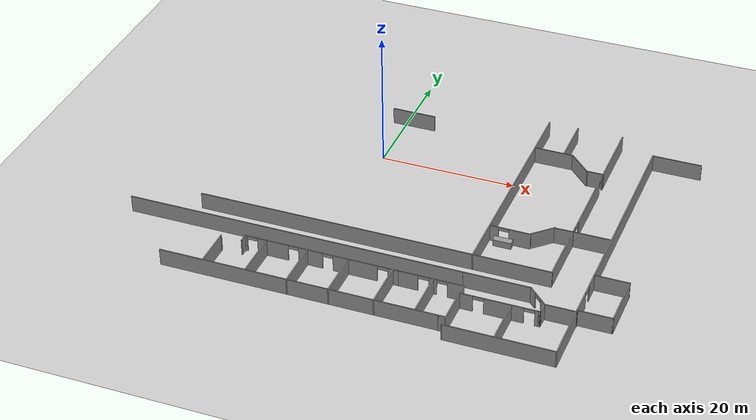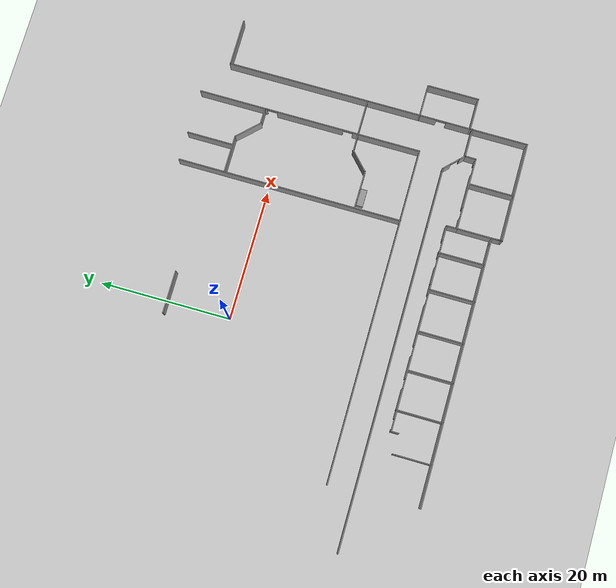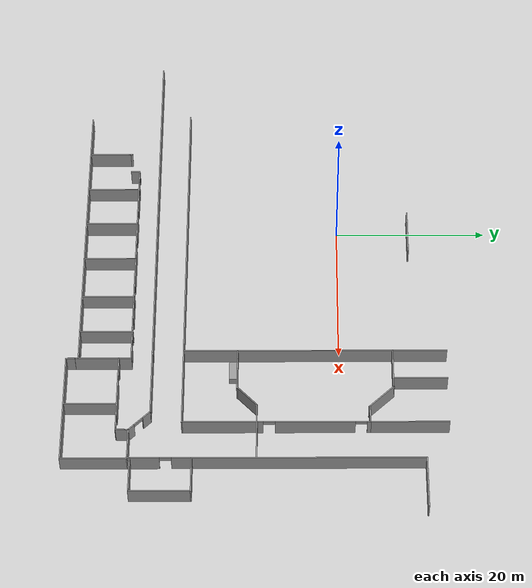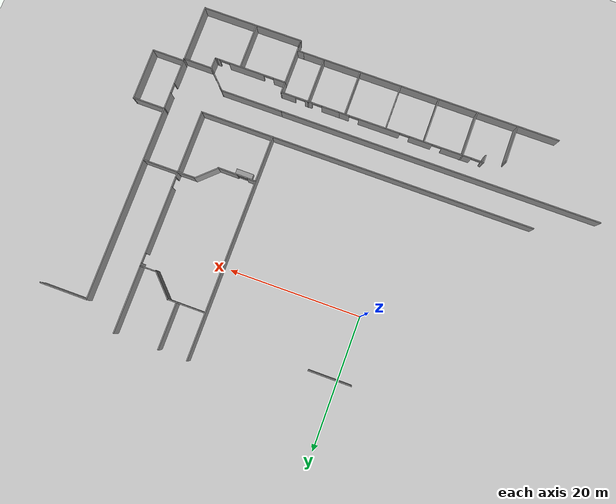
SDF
<sdf version="1.6">
 <world name="default">
  <model name="ground_plane">
   <static>1</static>
   <link name="link">
    <collision name="collision">
     <geometry><plane><normal>0 0 1</normal><size>100 100</size></plane></geometry>
     <surface><friction><ode><mu>100</mu><mu2>50</mu2></ode></friction></surface>
    </collision>
    <visual name="visual">
     <cast_shadows>0</cast_shadows>
     <geometry><plane><normal>0 0 1</normal><size>100 100</size></plane></geometry>
     <material>
      <script><uri>file://media/materials/scripts/gazebo.material</uri><name>Gazebo/Grey</name></script>
     </material>
    </visual>
   </link>
  </model>
  <model name="aule_N">
   <pose>0.1887 -1.4289 0 0 -0 0</pose>
   <link name="Wall_102">
    <collision name="Wall_102_Collision">
     <geometry><box><size>10.25 0.15 2.5</size></box></geometry>
     <pose>0 0 1.25 0 -0 0</pose>
    </collision>
    <visual name="Wall_102_Visual">
     <pose>0 0 1.25 0 -0 0</pose>
     <geometry><box><size>10.25 0.15 2.5</size></box></geometry>
     <material>
      <script><uri>file://media/materials/scripts/gazebo.material</uri><name>Gazebo/Grey</name></script>
      <ambient>1 1 1 1</ambient>
     </material>
    </visual>
    <pose>31.8169 10.3497 0 0 -0 1.5708</pose>
   </link>
   <link name="Wall_106">
    <collision name="Wall_106_Collision">
     <geometry><box><size>7 0.15 2.5</size></box></geometry>
     <pose>0 0 1.25 0 -0 0</pose>
    </collision>
    <visual name="Wall_106_Visual">
     <pose>0 0 1.25 0 -0 0</pose>
     <geometry><box><size>7 0.15 2.5</size></box></geometry>
     <material>
      <script><uri>file://media/materials/scripts/gazebo.material</uri><name>Gazebo/Grey</name></script>
      <ambient>1 1 1 1</ambient>
     </material>
    </visual>
    <pose>25.0644 11.9766 0 0 0 -1.5708</pose>
   </link>
   <link name="Wall_148">
    <collision name="Wall_148_Collision">
     <geometry><box><size>6.5 0.15 2.5</size></box></geometry>
     <pose>0 0 1.25 0 -0 0</pose>
    </collision>
    <visual name="Wall_148_Visual">
     <pose>0 0 1.25 0 -0 0</pose>
     <geometry><box><size>6.5 0.15 2.5</size></box></geometry>
     <material>
      <script><uri>file://media/materials/scripts/gazebo.material</uri><name>Gazebo/Grey</name></script>
      <ambient>1 1 1 1</ambient>
     </material>
    </visual>
    <pose>1.0491 10.9731 0 0 -0 0</pose>
   </link>
   <link name="Wall_186">
    <pose>37.2203 -21.5545 0 0 0 -1.5708</pose>
    <visual name="Wall_186_Visual_0">
     <pose>-2.80179 0 1.25 0 -0 0</pose>
     <geometry><box><size>2.64642 0.15 2.5</size></box></geometry>
     <material>
      <script><uri>file://media/materials/scripts/gazebo.material</uri><name>Gazebo/Grey</name></script>
      <ambient>1 1 1 1</ambient>
     </material>
    </visual>
    <collision name="Wall_186_Collision_0">
     <geometry><box><size>2.64642 0.15 2.5</size></box></geometry>
     <pose>-2.80179 0 1.25 0 -0 0</pose>
    </collision>
    <visual name="Wall_186_Visual_1">
     <pose>2.07321 0 1.25 0 -0 0</pose>
     <geometry><box><size>4.10358 0.15 2.5</size></box></geometry>
     <material>
      <script><uri>file://media/materials/scripts/gazebo.material</uri><name>Gazebo/Grey</name></script>
      <ambient>1 1 1 1</ambient>
     </material>
    </visual>
    <collision name="Wall_186_Collision_1">
     <geometry><box><size>4.10358 0.15 2.5</size></box></geometry>
     <pose>2.07321 0 1.25 0 -0 0</pose>
    </collision>
    <visual name="Wall_186_Visual_2">
     <pose>-0.728584 0 2.25 0 -0 0</pose>
     <geometry><box><size>1.5 0.15 0.5</size></box></geometry>
     <material>
      <script><uri>file://media/materials/scripts/gazebo.material</uri><name>Gazebo/Grey</name></script>
      <ambient>1 1 1 1</ambient>
     </material>
    </visual>
    <collision name="Wall_186_Collision_2">
     <geometry><box><size>1.5 0.15 0.5</size></box></geometry>
     <pose>-0.728584 0 2.25 0 -0 0</pose>
    </collision>
   </link>
   <link name="Wall_190">
    <collision name="Wall_190_Collision">
     <geometry><box><size>49.25 0.15 2.5</size></box></geometry>
     <pose>0 0 1.25 0 -0 0</pose>
    </collision>
    <visual name="Wall_190_Visual">
     <pose>0 0 1.25 0 -0 0</pose>
     <geometry><box><size>49.25 0.15 2.5</size></box></geometry>
     <material>
      <script><uri>file://media/materials/scripts/gazebo.material</uri><name>Gazebo/Grey</name></script>
      <ambient>1 1 1 1</ambient>
     </material>
    </visual>
    <pose>-3.68943 -22.9551 0 0 -0 0</pose>
   </link>
   <link name="Wall_192">
    <collision name="Wall_192_Collision">
     <geometry><box><size>9.5 0.15 2.5</size></box></geometry>
     <pose>0 0 1.25 0 -0 0</pose>
    </collision>
    <visual name="Wall_192_Visual">
     <pose>0 0 1.25 0 -0 0</pose>
     <geometry><box><size>9.5 0.15 2.5</size></box></geometry>
     <material>
      <script><uri>file://media/materials/scripts/gazebo.material</uri><name>Gazebo/Grey</name></script>
      <ambient>1 1 1 1</ambient>
     </material>
    </visual>
    <pose>25.5356 -22.9551 0 0 -0 0</pose>
   </link>
   <link name="Wall_193">
    <pose>31.5718 -24.3163 0 0 0 -0.785398</pose>
    <visual name="Wall_193_Visual_0">
     <pose>-1.29532 0 1.25 0 -0 0</pose>
     <geometry><box><size>1.40936 0.15 2.5</size></box></geometry>
     <material>
      <script><uri>file://media/materials/scripts/gazebo.material</uri><name>Gazebo/Grey</name></script>
      <ambient>1 1 1 1</ambient>
     </material>
    </visual>
    <collision name="Wall_193_Collision_0">
     <geometry><box><size>1.40936 0.15 2.5</size></box></geometry>
     <pose>-1.29532 0 1.25 0 -0 0</pose>
    </collision>
    <visual name="Wall_193_Visual_1">
     <pose>1.45468 0 1.25 0 -0 0</pose>
     <geometry><box><size>1.09064 0.15 2.5</size></box></geometry>
     <material>
      <script><uri>file://media/materials/scripts/gazebo.material</uri><name>Gazebo/Grey</name></script>
      <ambient>1 1 1 1</ambient>
     </material>
    </visual>
    <collision name="Wall_193_Collision_1">
     <geometry><box><size>1.09064 0.15 2.5</size></box></geometry>
     <pose>1.45468 0 1.25 0 -0 0</pose>
    </collision>
    <visual name="Wall_193_Visual_2">
     <pose>0.15936 0 2.25 0 -0 0</pose>
     <geometry><box><size>1.5 0.15 0.5</size></box></geometry>
     <material>
      <script><uri>file://media/materials/scripts/gazebo.material</uri><name>Gazebo/Grey</name></script>
      <ambient>1 1 1 1</ambient>
     </material>
    </visual>
    <collision name="Wall_193_Collision_2">
     <geometry><box><size>1.5 0.15 0.5</size></box></geometry>
     <pose>0.15936 0 2.25 0 -0 0</pose>
    </collision>
   </link>
   <link name="Wall_194">
    <collision name="Wall_194_Collision">
     <geometry><box><size>4.5 0.15 2.5</size></box></geometry>
     <pose>0 0 1.25 0 -0 0</pose>
    </collision>
    <visual name="Wall_194_Visual">
     <pose>0 0 1.25 0 -0 0</pose>
     <geometry><box><size>4.5 0.15 2.5</size></box></geometry>
     <material>
      <script><uri>file://media/materials/scripts/gazebo.material</uri><name>Gazebo/Grey</name></script>
      <ambient>1 1 1 1</ambient>
     </material>
    </visual>
    <pose>35.1079 -25.6775 0 0 -0 0</pose>
   </link>
   <link name="Wall_200">
    <collision name="Wall_200_Collision">
     <geometry><box><size>1.25 0.15 2.5</size></box></geometry>
     <pose>0 0 1.25 0 -0 0</pose>
    </collision>
    <visual name="Wall_200_Visual">
     <pose>0 0 1.25 0 -0 0</pose>
     <geometry><box><size>1.25 0.15 2.5</size></box></geometry>
     <material>
      <script><uri>file://media/materials/scripts/gazebo.material</uri><name>Gazebo/Grey</name></script>
      <ambient>1 1 1 1</ambient>
     </material>
    </visual>
    <pose>-9.6092 -26.2662 0 0 -0 1.5708</pose>
   </link>
   <link name="Wall_201">
    <pose>1.5658 -25.7162 0 0 -0 0</pose>
    <visual name="Wall_201_Visual_0">
     <pose>-11.0306 0 1.25 0 -0 0</pose>
     <geometry><box><size>0.438757 0.15 2.5</size></box></geometry>
     <material>
      <script><uri>file://media/materials/scripts/gazebo.material</uri><name>Gazebo/Grey</name></script>
      <ambient>1 1 1 1</ambient>
     </material>
    </visual>
    <collision name="Wall_201_Collision_0">
     <geometry><box><size>0.438757 0.15 2.5</size></box></geometry>
     <pose>-11.0306 0 1.25 0 -0 0</pose>
    </collision>
    <visual name="Wall_201_Visual_1">
     <pose>-7.0473 0 1.25 0 -0 0</pose>
     <geometry><box><size>4.52788 0.15 2.5</size></box></geometry>
     <material>
      <script><uri>file://media/materials/scripts/gazebo.material</uri><name>Gazebo/Grey</name></script>
      <ambient>1 1 1 1</ambient>
     </material>
    </visual>
    <collision name="Wall_201_Collision_1">
     <geometry><box><size>4.52788 0.15 2.5</size></box></geometry>
     <pose>-7.0473 0 1.25 0 -0 0</pose>
    </collision>
    <visual name="Wall_201_Visual_2">
     <pose>-1.52512 0 1.25 0 -0 0</pose>
     <geometry><box><size>3.51649 0.15 2.5</size></box></geometry>
     <material>
      <script><uri>file://media/materials/scripts/gazebo.material</uri><name>Gazebo/Grey</name></script>
      <ambient>1 1 1 1</ambient>
     </material>
    </visual>
    <collision name="Wall_201_Collision_2">
     <geometry><box><size>3.51649 0.15 2.5</size></box></geometry>
     <pose>-1.52512 0 1.25 0 -0 0</pose>
    </collision>
    <visual name="Wall_201_Visual_3">
     <pose>4.92755 0 1.25 0 -0 0</pose>
     <geometry><box><size>6.38884 0.15 2.5</size></box></geometry>
     <material>
      <script><uri>file://media/materials/scripts/gazebo.material</uri><name>Gazebo/Grey</name></script>
      <ambient>1 1 1 1</ambient>
     </material>
    </visual>
    <collision name="Wall_201_Collision_3">
     <geometry><box><size>6.38884 0.15 2.5</size></box></geometry>
     <pose>4.92755 0 1.25 0 -0 0</pose>
    </collision>
    <visual name="Wall_201_Visual_4">
     <pose>10.436 0 1.25 0 -0 0</pose>
     <geometry><box><size>1.62803 0.15 2.5</size></box></geometry>
     <material>
      <script><uri>file://media/materials/scripts/gazebo.material</uri><name>Gazebo/Grey</name></script>
      <ambient>1 1 1 1</ambient>
     </material>
    </visual>
    <collision name="Wall_201_Collision_4">
     <geometry><box><size>1.62803 0.15 2.5</size></box></geometry>
     <pose>10.436 0 1.25 0 -0 0</pose>
    </collision>
    <visual name="Wall_201_Visual_5">
     <pose>-10.0612 0 2.25 0 -0 0</pose>
     <geometry><box><size>1.5 0.15 0.5</size></box></geometry>
     <material>
      <script><uri>file://media/materials/scripts/gazebo.material</uri><name>Gazebo/Grey</name></script>
      <ambient>1 1 1 1</ambient>
     </material>
    </visual>
    <collision name="Wall_201_Collision_5">
     <geometry><box><size>1.5 0.15 0.5</size></box></geometry>
     <pose>-10.0612 0 2.25 0 -0 0</pose>
    </collision>
    <visual name="Wall_201_Visual_6">
     <pose>-4.03336 0 2.25 0 -0 0</pose>
     <geometry><box><size>1.5 0.15 0.5</size></box></geometry>
     <material>
      <script><uri>file://media/materials/scripts/gazebo.material</uri><name>Gazebo/Grey</name></script>
      <ambient>1 1 1 1</ambient>
     </material>
    </visual>
    <collision name="Wall_201_Collision_6">
     <geometry><box><size>1.5 0.15 0.5</size></box></geometry>
     <pose>-4.03336 0 2.25 0 -0 0</pose>
    </collision>
    <visual name="Wall_201_Visual_7">
     <pose>0.98313 0 2.25 0 -0 0</pose>
     <geometry><box><size>1.5 0.15 0.5</size></box></geometry>
     <material>
      <script><uri>file://media/materials/scripts/gazebo.material</uri><name>Gazebo/Grey</name></script>
      <ambient>1 1 1 1</ambient>
     </material>
    </visual>
    <collision name="Wall_201_Collision_7">
     <geometry><box><size>1.5 0.15 0.5</size></box></geometry>
     <pose>0.98313 0 2.25 0 -0 0</pose>
    </collision>
    <visual name="Wall_201_Visual_8">
     <pose>8.87197 0 2.25 0 -0 0</pose>
     <geometry><box><size>1.5 0.15 0.5</size></box></geometry>
     <material>
      <script><uri>file://media/materials/scripts/gazebo.material</uri><name>Gazebo/Grey</name></script>
      <ambient>1 1 1 1</ambient>
     </material>
    </visual>
    <collision name="Wall_201_Collision_8">
     <geometry><box><size>1.5 0.15 0.5</size></box></geometry>
     <pose>8.87197 0 2.25 0 -0 0</pose>
    </collision>
   </link>
   <link name="Wall_202">
    <pose>17.2908 -25.7162 0 0 -0 0</pose>
    <visual name="Wall_202_Visual_0">
     <pose>-3.22144 0 1.25 0 -0 0</pose>
     <geometry><box><size>2.80712 0.15 2.5</size></box></geometry>
     <material>
      <script><uri>file://media/materials/scripts/gazebo.material</uri><name>Gazebo/Grey</name></script>
      <ambient>1 1 1 1</ambient>
     </material>
    </visual>
    <collision name="Wall_202_Collision_0">
     <geometry><box><size>2.80712 0.15 2.5</size></box></geometry>
     <pose>-3.22144 0 1.25 0 -0 0</pose>
    </collision>
    <visual name="Wall_202_Visual_1">
     <pose>0.246922 0 1.25 0 -0 0</pose>
     <geometry><box><size>1.12961 0.15 2.5</size></box></geometry>
     <material>
      <script><uri>file://media/materials/scripts/gazebo.material</uri><name>Gazebo/Grey</name></script>
      <ambient>1 1 1 1</ambient>
     </material>
    </visual>
    <collision name="Wall_202_Collision_1">
     <geometry><box><size>1.12961 0.15 2.5</size></box></geometry>
     <pose>0.246922 0 1.25 0 -0 0</pose>
    </collision>
    <visual name="Wall_202_Visual_2">
     <pose>3.46836 0 1.25 0 -0 0</pose>
     <geometry><box><size>2.31327 0.15 2.5</size></box></geometry>
     <material>
      <script><uri>file://media/materials/scripts/gazebo.material</uri><name>Gazebo/Grey</name></script>
      <ambient>1 1 1 1</ambient>
     </material>
    </visual>
    <collision name="Wall_202_Collision_2">
     <geometry><box><size>2.31327 0.15 2.5</size></box></geometry>
     <pose>3.46836 0 1.25 0 -0 0</pose>
    </collision>
    <visual name="Wall_202_Visual_3">
     <pose>-1.06788 0 2.25 0 -0 0</pose>
     <geometry><box><size>1.5 0.15 0.5</size></box></geometry>
     <material>
      <script><uri>file://media/materials/scripts/gazebo.material</uri><name>Gazebo/Grey</name></script>
      <ambient>1 1 1 1</ambient>
     </material>
    </visual>
    <collision name="Wall_202_Collision_3">
     <geometry><box><size>1.5 0.15 0.5</size></box></geometry>
     <pose>-1.06788 0 2.25 0 -0 0</pose>
    </collision>
    <visual name="Wall_202_Visual_4">
     <pose>1.56173 0 2.25 0 -0 0</pose>
     <geometry><box><size>1.5 0.15 0.5</size></box></geometry>
     <material>
      <script><uri>file://media/materials/scripts/gazebo.material</uri><name>Gazebo/Grey</name></script>
      <ambient>1 1 1 1</ambient>
     </material>
    </visual>
    <collision name="Wall_202_Collision_4">
     <geometry><box><size>1.5 0.15 0.5</size></box></geometry>
     <pose>1.56173 0 2.25 0 -0 0</pose>
    </collision>
   </link>
   <link name="Wall_203">
    <collision name="Wall_203_Collision">
     <geometry><box><size>1.75 0.15 2.5</size></box></geometry>
     <pose>0 0 1.25 0 -0 0</pose>
    </collision>
    <visual name="Wall_203_Visual">
     <pose>0 0 1.25 0 -0 0</pose>
     <geometry><box><size>1.75 0.15 2.5</size></box></geometry>
     <material>
      <script><uri>file://media/materials/scripts/gazebo.material</uri><name>Gazebo/Grey</name></script>
      <ambient>1 1 1 1</ambient>
     </material>
    </visual>
    <pose>21.8408 -26.5162 0 0 0 -1.5708</pose>
   </link>
   <link name="Wall_204">
    <pose>27.2658 -27.3162 0 0 -0 0</pose>
    <visual name="Wall_204_Visual_0">
     <pose>-4.54037 0 1.25 0 -0 0</pose>
     <geometry><box><size>1.91926 0.15 2.5</size></box></geometry>
     <material>
      <script><uri>file://media/materials/scripts/gazebo.material</uri><name>Gazebo/Grey</name></script>
      <ambient>1 1 1 1</ambient>
     </material>
    </visual>
    <collision name="Wall_204_Collision_0">
     <geometry><box><size>1.91926 0.15 2.5</size></box></geometry>
     <pose>-4.54037 0 1.25 0 -0 0</pose>
    </collision>
    <visual name="Wall_204_Visual_1">
     <pose>0.656549 0 1.25 0 -0 0</pose>
     <geometry><box><size>5.47457 0.15 2.5</size></box></geometry>
     <material>
      <script><uri>file://media/materials/scripts/gazebo.material</uri><name>Gazebo/Grey</name></script>
      <ambient>1 1 1 1</ambient>
     </material>
    </visual>
    <collision name="Wall_204_Collision_1">
     <geometry><box><size>5.47457 0.15 2.5</size></box></geometry>
     <pose>0.656549 0 1.25 0 -0 0</pose>
    </collision>
    <visual name="Wall_204_Visual_2">
     <pose>5.19692 0 1.25 0 -0 0</pose>
     <geometry><box><size>0.606165 0.15 2.5</size></box></geometry>
     <material>
      <script><uri>file://media/materials/scripts/gazebo.material</uri><name>Gazebo/Grey</name></script>
      <ambient>1 1 1 1</ambient>
     </material>
    </visual>
    <collision name="Wall_204_Collision_2">
     <geometry><box><size>0.606165 0.15 2.5</size></box></geometry>
     <pose>5.19692 0 1.25 0 -0 0</pose>
    </collision>
    <visual name="Wall_204_Visual_3">
     <pose>-2.83074 0 2.25 0 -0 0</pose>
     <geometry><box><size>1.5 0.15 0.5</size></box></geometry>
     <material>
      <script><uri>file://media/materials/scripts/gazebo.material</uri><name>Gazebo/Grey</name></script>
      <ambient>1 1 1 1</ambient>
     </material>
    </visual>
    <collision name="Wall_204_Collision_3">
     <geometry><box><size>1.5 0.15 0.5</size></box></geometry>
     <pose>-2.83074 0 2.25 0 -0 0</pose>
    </collision>
    <visual name="Wall_204_Visual_4">
     <pose>4.14384 0 2.25 0 -0 0</pose>
     <geometry><box><size>1.5 0.15 0.5</size></box></geometry>
     <material>
      <script><uri>file://media/materials/scripts/gazebo.material</uri><name>Gazebo/Grey</name></script>
      <ambient>1 1 1 1</ambient>
     </material>
    </visual>
    <collision name="Wall_204_Collision_4">
     <geometry><box><size>1.5 0.15 0.5</size></box></geometry>
     <pose>4.14384 0 2.25 0 -0 0</pose>
    </collision>
   </link>
   <link name="Wall_205">
    <collision name="Wall_205_Collision">
     <geometry><box><size>0.25 0.15 2.5</size></box></geometry>
     <pose>0 0 1.25 0 -0 0</pose>
    </collision>
    <visual name="Wall_205_Visual">
     <pose>0 0 1.25 0 -0 0</pose>
     <geometry><box><size>0.25 0.15 2.5</size></box></geometry>
     <material>
      <script><uri>file://media/materials/scripts/gazebo.material</uri><name>Gazebo/Grey</name></script>
      <ambient>1 1 1 1</ambient>
     </material>
    </visual>
    <pose>32.7408 -27.3162 0 0 -0 0</pose>
   </link>
   <link name="Wall_206">
    <collision name="Wall_206_Collision">
     <geometry><box><size>0.25 0.15 2.5</size></box></geometry>
     <pose>0 0 1.25 0 -0 0</pose>
    </collision>
    <visual name="Wall_206_Visual">
     <pose>0 0 1.25 0 -0 0</pose>
     <geometry><box><size>0.25 0.15 2.5</size></box></geometry>
     <material>
      <script><uri>file://media/materials/scripts/gazebo.material</uri><name>Gazebo/Grey</name></script>
      <ambient>1 1 1 1</ambient>
     </material>
    </visual>
    <pose>32.8408 -27.3162 0 0 -0 0</pose>
   </link>
   <link name="Wall_207">
    <collision name="Wall_207_Collision">
     <geometry><box><size>1.78929 0.15 2.5</size></box></geometry>
     <pose>0 0 1.25 0 -0 0</pose>
    </collision>
    <visual name="Wall_207_Visual">
     <pose>0 0 1.25 0 -0 0</pose>
     <geometry><box><size>1.78929 0.15 2.5</size></box></geometry>
     <material>
      <script><uri>file://media/materials/scripts/gazebo.material</uri><name>Gazebo/Grey</name></script>
      <ambient>1 1 1 1</ambient>
     </material>
    </visual>
    <pose>32.9119 -26.4969 0 0 -0 1.54509</pose>
   </link>
   <link name="Wall_209">
    <collision name="Wall_209_Collision">
     <geometry><box><size>6.75 0.15 2.5</size></box></geometry>
     <pose>0 0 1.25 0 -0 0</pose>
    </collision>
    <visual name="Wall_209_Visual">
     <pose>0 0 1.25 0 -0 0</pose>
     <geometry><box><size>6.75 0.15 2.5</size></box></geometry>
     <material>
      <script><uri>file://media/materials/scripts/gazebo.material</uri><name>Gazebo/Grey</name></script>
      <ambient>1 1 1 1</ambient>
     </material>
    </visual>
    <pose>21.8408 -30.6162 0 0 0 -1.5708</pose>
   </link>
   <link name="Wall_213">
    <collision name="Wall_213_Collision">
     <geometry><box><size>7 0.15 2.5</size></box></geometry>
     <pose>0 0 1.25 0 -0 0</pose>
    </collision>
    <visual name="Wall_213_Visual">
     <pose>0 0 1.25 0 -0 0</pose>
     <geometry><box><size>7 0.15 2.5</size></box></geometry>
     <material>
      <script><uri>file://media/materials/scripts/gazebo.material</uri><name>Gazebo/Grey</name></script>
      <ambient>1 1 1 1</ambient>
     </material>
    </visual>
    <pose>17.6159 -29.1253 0 0 0 -1.5708</pose>
   </link>
   <link name="Wall_217">
    <collision name="Wall_217_Collision">
     <geometry><box><size>7 0.15 2.5</size></box></geometry>
     <pose>0 0 1.25 0 -0 0</pose>
    </collision>
    <visual name="Wall_217_Visual">
     <pose>0 0 1.25 0 -0 0</pose>
     <geometry><box><size>7 0.15 2.5</size></box></geometry>
     <material>
      <script><uri>file://media/materials/scripts/gazebo.material</uri><name>Gazebo/Grey</name></script>
      <ambient>1 1 1 1</ambient>
     </material>
    </visual>
    <pose>11.8942 -29.1817 0 0 0 -1.5708</pose>
   </link>
   <link name="Wall_219">
    <collision name="Wall_219_Collision">
     <geometry><box><size>7 0.15 2.5</size></box></geometry>
     <pose>0 0 1.25 0 -0 0</pose>
    </collision>
    <visual name="Wall_219_Visual">
     <pose>0 0 1.25 0 -0 0</pose>
     <geometry><box><size>7 0.15 2.5</size></box></geometry>
     <material>
      <script><uri>file://media/materials/scripts/gazebo.material</uri><name>Gazebo/Grey</name></script>
      <ambient>1 1 1 1</ambient>
     </material>
    </visual>
    <pose>5.50219 -29.1817 0 0 0 -1.5708</pose>
   </link>
   <link name="Wall_22">
    <collision name="Wall_22_Collision">
     <geometry><box><size>40 0.15 2.5</size></box></geometry>
     <pose>0 0 1.25 0 -0 0</pose>
    </collision>
    <visual name="Wall_22_Visual">
     <pose>0 0 1.25 0 -0 0</pose>
     <geometry><box><size>40 0.15 2.5</size></box></geometry>
     <material>
      <script><uri>file://media/materials/scripts/gazebo.material</uri><name>Gazebo/Grey</name></script>
      <ambient>1 1 1 1</ambient>
     </material>
    </visual>
    <pose>0.945301 -32.6045 0 0 -0 0</pose>
   </link>
   <link name="Wall_221">
    <collision name="Wall_221_Collision">
     <geometry><box><size>7 0.15 2.5</size></box></geometry>
     <pose>0 0 1.25 0 -0 0</pose>
    </collision>
    <visual name="Wall_221_Visual">
     <pose>0 0 1.25 0 -0 0</pose>
     <geometry><box><size>7 0.15 2.5</size></box></geometry>
     <material>
      <script><uri>file://media/materials/scripts/gazebo.material</uri><name>Gazebo/Grey</name></script>
      <ambient>1 1 1 1</ambient>
     </material>
    </visual>
    <pose>-0.444779 -29.1817 0 0 0 -1.5708</pose>
   </link>
   <link name="Wall_223">
    <collision name="Wall_223_Collision">
     <geometry><box><size>7 0.15 2.5</size></box></geometry>
     <pose>0 0 1.25 0 -0 0</pose>
    </collision>
    <visual name="Wall_223_Visual">
     <pose>0 0 1.25 0 -0 0</pose>
     <geometry><box><size>7 0.15 2.5</size></box></geometry>
     <material>
      <script><uri>file://media/materials/scripts/gazebo.material</uri><name>Gazebo/Grey</name></script>
      <ambient>1 1 1 1</ambient>
     </material>
    </visual>
    <pose>-6.4322 -29.1008 0 0 0 -1.5708</pose>
   </link>
   <link name="Wall_225">
    <collision name="Wall_225_Collision">
     <geometry><box><size>5.5 0.15 2.5</size></box></geometry>
     <pose>0 0 1.25 0 -0 0</pose>
    </collision>
    <visual name="Wall_225_Visual">
     <pose>0 0 1.25 0 -0 0</pose>
     <geometry><box><size>5.5 0.15 2.5</size></box></geometry>
     <material>
      <script><uri>file://media/materials/scripts/gazebo.material</uri><name>Gazebo/Grey</name></script>
      <ambient>1 1 1 1</ambient>
     </material>
    </visual>
    <pose>-12.6624 -29.8072 0 0 0 -1.5708</pose>
   </link>
   <link name="Wall_233">
    <collision name="Wall_233_Collision">
     <geometry><box><size>15.5 0.15 2.5</size></box></geometry>
     <pose>0 0 1.25 0 -0 0</pose>
    </collision>
    <visual name="Wall_233_Visual">
     <pose>0 0 1.25 0 -0 0</pose>
     <geometry><box><size>15.5 0.15 2.5</size></box></geometry>
     <material>
      <script><uri>file://media/materials/scripts/gazebo.material</uri><name>Gazebo/Grey</name></script>
      <ambient>1 1 1 1</ambient>
     </material>
    </visual>
    <pose>29.5453 -34.2006 0 0 -0 3.14159</pose>
   </link>
   <link name="Wall_234">
    <collision name="Wall_234_Collision">
     <geometry><box><size>1.25 0.15 2.5</size></box></geometry>
     <pose>0 0 1.25 0 -0 0</pose>
    </collision>
    <visual name="Wall_234_Visual">
     <pose>0 0 1.25 0 -0 0</pose>
     <geometry><box><size>1.25 0.15 2.5</size></box></geometry>
     <material>
      <script><uri>file://media/materials/scripts/gazebo.material</uri><name>Gazebo/Grey</name></script>
      <ambient>1 1 1 1</ambient>
     </material>
    </visual>
    <pose>21.8703 -33.6506 0 0 -0 1.5708</pose>
   </link>
   <link name="Wall_236">
    <collision name="Wall_236_Collision">
     <geometry><box><size>1 0.15 2.5</size></box></geometry>
     <pose>0 0 1.25 0 -0 0</pose>
    </collision>
    <visual name="Wall_236_Visual">
     <pose>0 0 1.25 0 -0 0</pose>
     <geometry><box><size>1 0.15 2.5</size></box></geometry>
     <material>
      <script><uri>file://media/materials/scripts/gazebo.material</uri><name>Gazebo/Grey</name></script>
      <ambient>1 1 1 1</ambient>
     </material>
    </visual>
    <pose>21.2953 -32.6045 0 0 -0 0</pose>
   </link>
   <link name="Wall_240">
    <collision name="Wall_240_Collision">
     <geometry><box><size>6.75 0.15 2.5</size></box></geometry>
     <pose>0 0 1.25 0 -0 0</pose>
    </collision>
    <visual name="Wall_240_Visual">
     <pose>0 0 1.25 0 -0 0</pose>
     <geometry><box><size>6.75 0.15 2.5</size></box></geometry>
     <material>
      <script><uri>file://media/materials/scripts/gazebo.material</uri><name>Gazebo/Grey</name></script>
      <ambient>1 1 1 1</ambient>
     </material>
    </visual>
    <pose>28.9447 -30.738 0 0 0 -1.5708</pose>
   </link>
   <link name="Wall_27">
    <collision name="Wall_27_Collision">
     <geometry><box><size>8.99611 0.15 2.5</size></box></geometry>
     <pose>0 0 1.25 0 -0 0</pose>
    </collision>
    <visual name="Wall_27_Visual">
     <pose>0 0 1.25 0 -0 0</pose>
     <geometry><box><size>8.99611 0.15 2.5</size></box></geometry>
     <material>
      <script><uri>file://media/materials/scripts/gazebo.material</uri><name>Gazebo/Grey</name></script>
      <ambient>1 1 1 1</ambient>
     </material>
    </visual>
    <pose>37.2203 -29.7776 0 0 -0 1.5708</pose>
   </link>
   <link name="Wall_34">
    <collision name="Wall_34_Collision">
     <geometry><box><size>5 0.15 2.5</size></box></geometry>
     <pose>0 0 1.25 0 -0 0</pose>
    </collision>
    <visual name="Wall_34_Visual">
     <pose>0 0 1.25 0 -0 0</pose>
     <geometry><box><size>5 0.15 2.5</size></box></geometry>
     <material>
      <script><uri>file://media/materials/scripts/gazebo.material</uri><name>Gazebo/Grey</name></script>
      <ambient>1 1 1 1</ambient>
     </material>
    </visual>
    <pose>39.6453 -25.3545 0 0 -0 0</pose>
   </link>
   <link name="Wall_35">
    <collision name="Wall_35_Collision">
     <geometry><box><size>8 0.15 2.5</size></box></geometry>
     <pose>0 0 1.25 0 -0 0</pose>
    </collision>
    <visual name="Wall_35_Visual">
     <pose>0 0 1.25 0 -0 0</pose>
     <geometry><box><size>8 0.15 2.5</size></box></geometry>
     <material>
      <script><uri>file://media/materials/scripts/gazebo.material</uri><name>Gazebo/Grey</name></script>
      <ambient>1 1 1 1</ambient>
     </material>
    </visual>
    <pose>42.0703 -21.4295 0 0 -0 1.5708</pose>
   </link>
   <link name="Wall_36">
    <collision name="Wall_36_Collision">
     <geometry><box><size>5 0.15 2.5</size></box></geometry>
     <pose>0 0 1.25 0 -0 0</pose>
    </collision>
    <visual name="Wall_36_Visual">
     <pose>0 0 1.25 0 -0 0</pose>
     <geometry><box><size>5 0.15 2.5</size></box></geometry>
     <material>
      <script><uri>file://media/materials/scripts/gazebo.material</uri><name>Gazebo/Grey</name></script>
      <ambient>1 1 1 1</ambient>
     </material>
    </visual>
    <pose>39.6453 -17.5045 0 0 -0 3.14159</pose>
   </link>
   <link name="Wall_37">
    <collision name="Wall_37_Collision">
     <geometry><box><size>30 0.15 2.5</size></box></geometry>
     <pose>0 0 1.25 0 -0 0</pose>
    </collision>
    <visual name="Wall_37_Visual">
     <pose>0 0 1.25 0 -0 0</pose>
     <geometry><box><size>30 0.15 2.5</size></box></geometry>
     <material>
      <script><uri>file://media/materials/scripts/gazebo.material</uri><name>Gazebo/Grey</name></script>
      <ambient>1 1 1 1</ambient>
     </material>
    </visual>
    <pose>37.2203 -2.57952 0 0 -0 1.5708</pose>
   </link>
   <link name="Wall_38">
    <collision name="Wall_38_Collision">
     <geometry><box><size>7.25 0.15 2.5</size></box></geometry>
     <pose>0 0 1.25 0 -0 0</pose>
    </collision>
    <visual name="Wall_38_Visual">
     <pose>0 0 1.25 0 -0 0</pose>
     <geometry><box><size>7.25 0.15 2.5</size></box></geometry>
     <material>
      <script><uri>file://media/materials/scripts/gazebo.material</uri><name>Gazebo/Grey</name></script>
      <ambient>1 1 1 1</ambient>
     </material>
    </visual>
    <pose>40.7703 12.3455 0 0 -0 0</pose>
   </link>
   <link name="Wall_46">
    <collision name="Wall_46_Collision">
     <geometry><box><size>40.25 0.15 2.5</size></box></geometry>
     <pose>0 0 1.25 0 -0 0</pose>
    </collision>
    <visual name="Wall_46_Visual">
     <pose>0 0 1.25 0 -0 0</pose>
     <geometry><box><size>40.25 0.15 2.5</size></box></geometry>
     <material>
      <script><uri>file://media/materials/scripts/gazebo.material</uri><name>Gazebo/Grey</name></script>
      <ambient>1 1 1 1</ambient>
     </material>
    </visual>
    <pose>0.642861 -18.8861 0 0 -0 0</pose>
   </link>
   <link name="Wall_47">
    <collision name="Wall_47_Collision">
     <geometry><box><size>34.5 0.15 2.5</size></box></geometry>
     <pose>0 0 1.25 0 -0 0</pose>
    </collision>
    <visual name="Wall_47_Visual">
     <pose>0 0 1.25 0 -0 0</pose>
     <geometry><box><size>34.5 0.15 2.5</size></box></geometry>
     <material>
      <script><uri>file://media/materials/scripts/gazebo.material</uri><name>Gazebo/Grey</name></script>
      <ambient>1 1 1 1</ambient>
     </material>
    </visual>
    <pose>20.6929 -1.71111 0 0 -0 1.5708</pose>
   </link>
   <link name="Wall_70">
    <collision name="Wall_70_Collision">
     <geometry><box><size>5.75 0.15 2.5</size></box></geometry>
     <pose>0 0 1.25 0 -0 0</pose>
    </collision>
    <visual name="Wall_70_Visual">
     <pose>0 0 1.25 0 -0 0</pose>
     <geometry><box><size>5.75 0.15 2.5</size></box></geometry>
     <material>
      <script><uri>file://media/materials/scripts/gazebo.material</uri><name>Gazebo/Grey</name></script>
      <ambient>1 1 1 1</ambient>
     </material>
    </visual>
    <pose>23.5919 8.40989 0 0 -0 0</pose>
   </link>
   <link name="Wall_71">
    <collision name="Wall_71_Collision">
     <geometry><box><size>4.57401 0.15 2.5</size></box></geometry>
     <pose>0 0 1.25 0 -0 0</pose>
    </collision>
    <visual name="Wall_71_Visual">
     <pose>0 0 1.25 0 -0 0</pose>
     <geometry><box><size>4.57401 0.15 2.5</size></box></geometry>
     <material>
      <script><uri>file://media/materials/scripts/gazebo.material</uri><name>Gazebo/Grey</name></script>
      <ambient>1 1 1 1</ambient>
     </material>
    </visual>
    <pose>27.9294 6.81961 0 0 0 -0.802267</pose>
   </link>
   <link name="Wall_72">
    <collision name="Wall_72_Collision">
     <geometry><box><size>2.5 0.15 2.5</size></box></geometry>
     <pose>0 0 1.25 0 -0 0</pose>
    </collision>
    <visual name="Wall_72_Visual">
     <pose>0 0 1.25 0 -0 0</pose>
     <geometry><box><size>2.5 0.15 2.5</size></box></geometry>
     <material>
      <script><uri>file://media/materials/scripts/gazebo.material</uri><name>Gazebo/Grey</name></script>
      <ambient>1 1 1 1</ambient>
     </material>
    </visual>
    <pose>30.6419 5.29968 0 0 -0 0</pose>
   </link>
   <link name="Wall_74">
    <collision name="Wall_74_Collision">
     <geometry><box><size>2.7028 0.15 2.5</size></box></geometry>
     <pose>0 0 1.25 0 -0 0</pose>
    </collision>
    <visual name="Wall_74_Visual">
     <pose>0 0 1.25 0 -0 0</pose>
     <geometry><box><size>2.7028 0.15 2.5</size></box></geometry>
     <material>
      <script><uri>file://media/materials/scripts/gazebo.material</uri><name>Gazebo/Grey</name></script>
      <ambient>1 1 1 1</ambient>
     </material>
    </visual>
    <pose>30.5208 -9.29683 0 0 0 -3.12997</pose>
   </link>
   <link name="Wall_80">
    <collision name="Wall_80_Collision">
     <geometry><box><size>3.78679 0.15 2.5</size></box></geometry>
     <pose>0 0 1.25 0 -0 0</pose>
    </collision>
    <visual name="Wall_80_Visual">
     <pose>0 0 1.25 0 -0 0</pose>
     <geometry><box><size>3.78679 0.15 2.5</size></box></geometry>
     <material>
      <script><uri>file://media/materials/scripts/gazebo.material</uri><name>Gazebo/Grey</name></script>
      <ambient>1 1 1 1</ambient>
     </material>
    </visual>
    <pose>27.8481 -10.5208 0 0 0 -2.38797</pose>
   </link>
   <link name="Wall_81">
    <pose>23.6204 -11.8349 0 0 -0 3.13358</pose>
    <visual name="Wall_81_Visual_0">
     <pose>-1.42133 0 1.25 0 -0 0</pose>
     <geometry><box><size>3.111 0.15 2.5</size></box></geometry>
     <material>
      <script><uri>file://media/materials/scripts/gazebo.material</uri><name>Gazebo/Grey</name></script>
      <ambient>1 1 1 1</ambient>
     </material>
    </visual>
    <collision name="Wall_81_Collision_0">
     <geometry><box><size>3.111 0.15 2.5</size></box></geometry>
     <pose>-1.42133 0 1.25 0 -0 0</pose>
    </collision>
    <visual name="Wall_81_Visual_1">
     <pose>2.3055 0 1.25 0 -0 0</pose>
     <geometry><box><size>1.34266 0.15 2.5</size></box></geometry>
     <material>
      <script><uri>file://media/materials/scripts/gazebo.material</uri><name>Gazebo/Grey</name></script>
      <ambient>1 1 1 1</ambient>
     </material>
    </visual>
    <collision name="Wall_81_Collision_1">
     <geometry><box><size>1.34266 0.15 2.5</size></box></geometry>
     <pose>2.3055 0 1.25 0 -0 0</pose>
    </collision>
    <visual name="Wall_81_Visual_2">
     <pose>0.88417 0 2.25 0 -0 0</pose>
     <geometry><box><size>1.5 0.15 0.5</size></box></geometry>
     <material>
      <script><uri>file://media/materials/scripts/gazebo.material</uri><name>Gazebo/Grey</name></script>
      <ambient>1 1 1 1</ambient>
     </material>
    </visual>
    <collision name="Wall_81_Collision_2">
     <geometry><box><size>1.5 0.15 0.5</size></box></geometry>
     <pose>0.88417 0 2.25 0 -0 0</pose>
    </collision>
   </link>
   <link name="Wall_87">
    <pose>31.8169 -1.89331 0 0 0 -1.5708</pose>
    <visual name="Wall_87_Visual_0">
     <pose>-7.01644 0 1.25 0 -0 0</pose>
     <geometry><box><size>0.503106 0.15 2.5</size></box></geometry>
     <material>
      <script><uri>file://media/materials/scripts/gazebo.material</uri><name>Gazebo/Grey</name></script>
      <ambient>1 1 1 1</ambient>
     </material>
    </visual>
    <collision name="Wall_87_Collision_0">
     <geometry><box><size>0.503106 0.15 2.5</size></box></geometry>
     <pose>-7.01644 0 1.25 0 -0 0</pose>
    </collision>
    <visual name="Wall_87_Visual_1">
     <pose>-0.110444 0 1.25 0 -0 0</pose>
     <geometry><box><size>10.3089 0.15 2.5</size></box></geometry>
     <material>
      <script><uri>file://media/materials/scripts/gazebo.material</uri><name>Gazebo/Grey</name></script>
      <ambient>1 1 1 1</ambient>
     </material>
    </visual>
    <collision name="Wall_87_Collision_1">
     <geometry><box><size>10.3089 0.15 2.5</size></box></geometry>
     <pose>-0.110444 0 1.25 0 -0 0</pose>
    </collision>
    <visual name="Wall_87_Visual_2">
     <pose>6.906 0 1.25 0 -0 0</pose>
     <geometry><box><size>0.723995 0.15 2.5</size></box></geometry>
     <material>
      <script><uri>file://media/materials/scripts/gazebo.material</uri><name>Gazebo/Grey</name></script>
      <ambient>1 1 1 1</ambient>
     </material>
    </visual>
    <collision name="Wall_87_Collision_2">
     <geometry><box><size>0.723995 0.15 2.5</size></box></geometry>
     <pose>6.906 0 1.25 0 -0 0</pose>
    </collision>
    <visual name="Wall_87_Visual_3">
     <pose>-6.01489 0 2.25 0 -0 0</pose>
     <geometry><box><size>1.5 0.15 0.5</size></box></geometry>
     <material>
      <script><uri>file://media/materials/scripts/gazebo.material</uri><name>Gazebo/Grey</name></script>
      <ambient>1 1 1 1</ambient>
     </material>
    </visual>
    <collision name="Wall_87_Collision_3">
     <geometry><box><size>1.5 0.15 0.5</size></box></geometry>
     <pose>-6.01489 0 2.25 0 -0 0</pose>
    </collision>
    <visual name="Wall_87_Visual_4">
     <pose>5.794 0 2.25 0 -0 0</pose>
     <geometry><box><size>1.5 0.15 0.5</size></box></geometry>
     <material>
      <script><uri>file://media/materials/scripts/gazebo.material</uri><name>Gazebo/Grey</name></script>
      <ambient>1 1 1 1</ambient>
     </material>
    </visual>
    <collision name="Wall_87_Collision_4">
     <geometry><box><size>1.5 0.15 0.5</size></box></geometry>
     <pose>5.794 0 2.25 0 -0 0</pose>
    </collision>
   </link>
   <link name="Wall_94">
    <collision name="Wall_94_Collision">
     <geometry><box><size>9.75 0.15 2.5</size></box></geometry>
     <pose>0 0 1.25 0 -0 0</pose>
    </collision>
    <visual name="Wall_94_Visual">
     <pose>0 0 1.25 0 -0 0</pose>
     <geometry><box><size>9.75 0.15 2.5</size></box></geometry>
     <material>
      <script><uri>file://media/materials/scripts/gazebo.material</uri><name>Gazebo/Grey</name></script>
      <ambient>1 1 1 1</ambient>
     </material>
    </visual>
    <pose>31.7971 -14.082 0 0 0 -1.5708</pose>
   </link>
   <link name="Wall_95">
    <collision name="Wall_95_Collision">
     <geometry><box><size>11.25 0.15 2.5</size></box></geometry>
     <pose>0 0 1.25 0 -0 0</pose>
    </collision>
    <visual name="Wall_95_Visual">
     <pose>0 0 1.25 0 -0 0</pose>
     <geometry><box><size>11.25 0.15 2.5</size></box></geometry>
     <material>
      <script><uri>file://media/materials/scripts/gazebo.material</uri><name>Gazebo/Grey</name></script>
      <ambient>1 1 1 1</ambient>
     </material>
    </visual>
    <pose>26.2471 -18.882 0 0 -0 3.14159</pose>
   </link>
   <static>1</static>
  </model>
  <model name="wall_piece_05">
   <pose>-12.4829 -28.4549 0 0 0 -1.53893</pose>
   <link name="Wall_248">
    <collision name="Wall_248_Collision">
     <geometry><box><size>0.5 0.15 2.5</size></box></geometry>
     <pose>0 0 1.25 0 -0 0</pose>
    </collision>
    <visual name="Wall_248_Visual">
     <pose>0 0 1.25 0 -0 0</pose>
     <geometry><box><size>0.5 0.15 2.5</size></box></geometry>
     <material>
      <script><uri>file://media/materials/scripts/gazebo.material</uri><name>Gazebo/Grey</name></script>
      <ambient>1 1 1 1</ambient>
     </material>
    </visual>
   </link>
   <static>1</static>
  </model>
  <model name="wall2">
   <pose>34.6917 -10.6984 0 0 -0 0</pose>
   <link name="Wall_10">
    <collision name="Wall_10_Collision">
     <geometry><box><size>5.25 0.15 2.5</size></box></geometry>
     <pose>0 0 1.25 0 -0 0</pose>
    </collision>
    <visual name="Wall_10_Visual">
     <pose>0 0 1.25 0 -0 0</pose>
     <geometry><box><size>5.25 0.15 2.5</size></box></geometry>
     <material>
      <script><uri>file://media/materials/scripts/gazebo.material</uri><name>Gazebo/Grey</name></script>
      <ambient>1 1 1 1</ambient>
     </material>
     <meta><layer>0</layer></meta>
    </visual>
   </link>
   <static>1</static>
  </model>
  <model name="unit_box">
   <pose>23.0325 -13.8534 0.499912 0 -6.7e-05 -2.4e-05</pose>
   <link name="link">
    <inertial>
     <mass>1</mass>
     <inertia>
      <ixx>0.166667</ixx>
      <ixy>0</ixy>
      <ixz>0</ixz>
      <iyy>0.166667</iyy>
      <iyz>0</iyz>
      <izz>0.166667</izz>
     </inertia>
    </inertial>
    <collision name="collision"><geometry><box><size>2.64678 1 1</size></box></geometry></collision>
    <visual name="visual">
     <geometry><box><size>2.64678 1 1</size></box></geometry>
     <material>
      <script><name>Gazebo/Grey</name><uri>file://media/materials/scripts/gazebo.material</uri></script>
     </material>
    </visual>
   </link>
  </model>
 </world>
</sdf>
